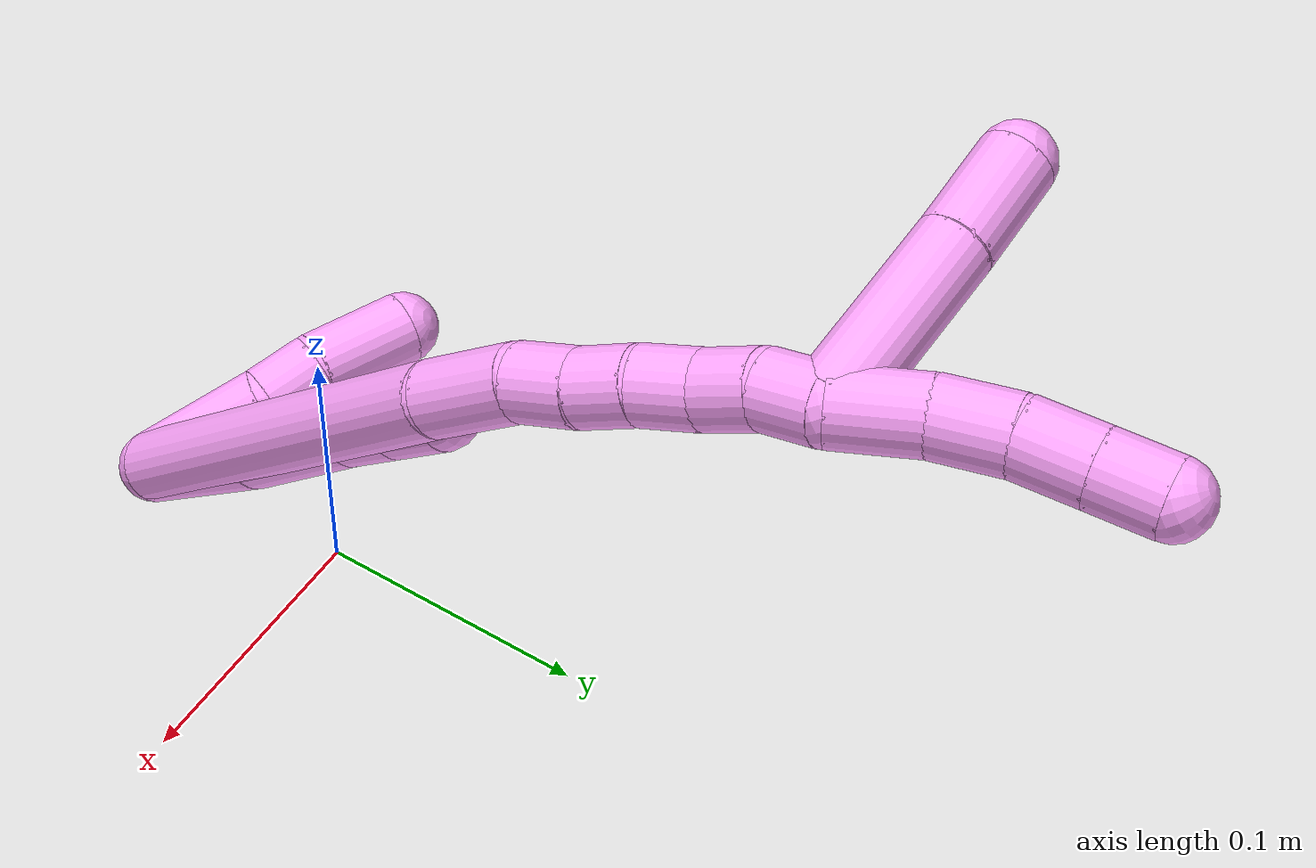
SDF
<sdf version="1.7">
 <world name="default">
  <model name="4">
   <static>0</static>
   <link name="4">
    <collision name="collision-cylinder-e_1_2_8">
     <pose>0.00084 0.006439 0.026341 -0.239734 0.03097 -0.00373</pose>
     <geometry><cylinder><radius>0.0125</radius><length>0.05426</length></cylinder></geometry>
     <surface>
      <friction><ode><mu>1.16</mu><mu2>1.16</mu2><slip1>0</slip1><slip2>0</slip2></ode></friction>
      <contact><ode><kp>1e+06</kp><kd>1</kd><max_vel>0</max_vel><min_depth>0.001</min_depth></ode></contact>
     </surface>
    </collision>
    <visual name="visual-cylinder-e_1_2_8">
     <pose>0.00084 0.006439 0.026341 -0.239734 0.03097 -0.00373</pose>
     <geometry><cylinder><radius>0.0125</radius><length>0.05426</length></cylinder></geometry>
     <material><ambient>1 0.65098 0.996078 1</ambient></material>
    </visual>
    <collision name="collision-cylinder-e_2_8_9">
     <pose>0.004582 0.019142 0.077634 -0.245976 0.112337 -0.013901</pose>
     <geometry><cylinder><radius>0.0125</radius><length>0.051777</length></cylinder></geometry>
     <surface>
      <friction><ode><mu>1.16</mu><mu2>1.16</mu2><slip1>0</slip1><slip2>0</slip2></ode></friction>
      <contact><ode><kp>1e+06</kp><kd>1</kd><max_vel>0</max_vel><min_depth>0.001</min_depth></ode></contact>
     </surface>
    </collision>
    <visual name="visual-cylinder-e_2_8_9">
     <pose>0.004582 0.019142 0.077634 -0.245976 0.112337 -0.013901</pose>
     <geometry><cylinder><radius>0.0125</radius><length>0.051777</length></cylinder></geometry>
     <material><ambient>1 0.65098 0.996078 1</ambient></material>
    </visual>
    <collision name="collision-cylinder-e_3_9_10">
     <pose>0.007858 0.02768 0.113144 -0.212135 0.034597 -0.003684</pose>
     <geometry><cylinder><radius>0.0125</radius><length>0.021616</length></cylinder></geometry>
     <surface>
      <friction><ode><mu>1.16</mu><mu2>1.16</mu2><slip1>0</slip1><slip2>0</slip2></ode></friction>
      <contact><ode><kp>1e+06</kp><kd>1</kd><max_vel>0</max_vel><min_depth>0.001</min_depth></ode></contact>
     </surface>
    </collision>
    <visual name="visual-cylinder-e_3_9_10">
     <pose>0.007858 0.02768 0.113144 -0.212135 0.034597 -0.003684</pose>
     <geometry><cylinder><radius>0.0125</radius><length>0.021616</length></cylinder></geometry>
     <material><ambient>1 0.65098 0.996078 1</ambient></material>
    </visual>
    <collision name="collision-cylinder-e_4_10_6">
     <pose>0.008664 0.032362 0.134606 -0.217384 0.03867 -0.00422</pose>
     <geometry><cylinder><radius>0.0125</radius><length>0.022347</length></cylinder></geometry>
     <surface>
      <friction><ode><mu>1.16</mu><mu2>1.16</mu2><slip1>0</slip1><slip2>0</slip2></ode></friction>
      <contact><ode><kp>1e+06</kp><kd>1</kd><max_vel>0</max_vel><min_depth>0.001</min_depth></ode></contact>
     </surface>
    </collision>
    <visual name="visual-cylinder-e_4_10_6">
     <pose>0.008664 0.032362 0.134606 -0.217384 0.03867 -0.00422</pose>
     <geometry><cylinder><radius>0.0125</radius><length>0.022347</length></cylinder></geometry>
     <material><ambient>1 0.65098 0.996078 1</ambient></material>
    </visual>
    <collision name="collision-cylinder-e_1_2_11">
     <pose>-6.9e-05 -0.010619 0.01972 0.493952 -0.003075 -0.000775</pose>
     <geometry><cylinder><radius>0.0125</radius><length>0.044794</length></cylinder></geometry>
     <surface>
      <friction><ode><mu>1.16</mu><mu2>1.16</mu2><slip1>0</slip1><slip2>0</slip2></ode></friction>
      <contact><ode><kp>1e+06</kp><kd>1</kd><max_vel>0</max_vel><min_depth>0.001</min_depth></ode></contact>
     </surface>
    </collision>
    <visual name="visual-cylinder-e_1_2_11">
     <pose>-6.9e-05 -0.010619 0.01972 0.493952 -0.003075 -0.000775</pose>
     <geometry><cylinder><radius>0.0125</radius><length>0.044794</length></cylinder></geometry>
     <material><ambient>1 0.65098 0.996078 1</ambient></material>
    </visual>
    <collision name="collision-cylinder-e_2_11_12">
     <pose>-0.000956 -0.028857 0.046454 0.826722 -0.078805 -0.034581</pose>
     <geometry><cylinder><radius>0.0125</radius><length>0.020777</length></cylinder></geometry>
     <surface>
      <friction><ode><mu>1.16</mu><mu2>1.16</mu2><slip1>0</slip1><slip2>0</slip2></ode></friction>
      <contact><ode><kp>1e+06</kp><kd>1</kd><max_vel>0</max_vel><min_depth>0.001</min_depth></ode></contact>
     </surface>
    </collision>
    <visual name="visual-cylinder-e_2_11_12">
     <pose>-0.000956 -0.028857 0.046454 0.826722 -0.078805 -0.034581</pose>
     <geometry><cylinder><radius>0.0125</radius><length>0.020777</length></cylinder></geometry>
     <material><ambient>1 0.65098 0.996078 1</ambient></material>
    </visual>
    <collision name="collision-cylinder-e_3_12_5">
     <pose>-0.00615 -0.049462 0.063886 0.894725 -0.257085 -0.123876</pose>
     <geometry><cylinder><radius>0.0125</radius><length>0.034428</length></cylinder></geometry>
     <surface>
      <friction><ode><mu>1.16</mu><mu2>1.16</mu2><slip1>0</slip1><slip2>0</slip2></ode></friction>
      <contact><ode><kp>1e+06</kp><kd>1</kd><max_vel>0</max_vel><min_depth>0.001</min_depth></ode></contact>
     </surface>
    </collision>
    <visual name="visual-cylinder-e_3_12_5">
     <pose>-0.00615 -0.049462 0.063886 0.894725 -0.257085 -0.123876</pose>
     <geometry><cylinder><radius>0.0125</radius><length>0.034428</length></cylinder></geometry>
     <material><ambient>1 0.65098 0.996078 1</ambient></material>
    </visual>
    <collision name="collision-cylinder-e_1_2_13">
     <pose>0.010219 0.022491 0.07682 -0.284812 0.126977 -0.018229</pose>
     <geometry><cylinder><radius>0.0125</radius><length>0.161388</length></cylinder></geometry>
     <surface>
      <friction><ode><mu>1.16</mu><mu2>1.16</mu2><slip1>0</slip1><slip2>0</slip2></ode></friction>
      <contact><ode><kp>1e+06</kp><kd>1</kd><max_vel>0</max_vel><min_depth>0.001</min_depth></ode></contact>
     </surface>
    </collision>
    <visual name="visual-cylinder-e_1_2_13">
     <pose>0.010219 0.022491 0.07682 -0.284812 0.126977 -0.018229</pose>
     <geometry><cylinder><radius>0.0125</radius><length>0.161388</length></cylinder></geometry>
     <material><ambient>1 0.65098 0.996078 1</ambient></material>
    </visual>
    <collision name="collision-cylinder-e_2_13_14">
     <pose>0.020675 0.047701 0.171084 -0.154684 0.01343 -0.001041</pose>
     <geometry><cylinder><radius>0.0125</radius><length>0.035314</length></cylinder></geometry>
     <surface>
      <friction><ode><mu>1.16</mu><mu2>1.16</mu2><slip1>0</slip1><slip2>0</slip2></ode></friction>
      <contact><ode><kp>1e+06</kp><kd>1</kd><max_vel>0</max_vel><min_depth>0.001</min_depth></ode></contact>
     </surface>
    </collision>
    <visual name="visual-cylinder-e_2_13_14">
     <pose>0.020675 0.047701 0.171084 -0.154684 0.01343 -0.001041</pose>
     <geometry><cylinder><radius>0.0125</radius><length>0.035314</length></cylinder></geometry>
     <material><ambient>1 0.65098 0.996078 1</ambient></material>
    </visual>
    <collision name="collision-cylinder-e_3_14_15">
     <pose>0.018324 0.052637 0.198891 -0.210647 -0.239501 0.025439</pose>
     <geometry><cylinder><radius>0.0125</radius><length>0.021816</length></cylinder></geometry>
     <surface>
      <friction><ode><mu>1.16</mu><mu2>1.16</mu2><slip1>0</slip1><slip2>0</slip2></ode></friction>
      <contact><ode><kp>1e+06</kp><kd>1</kd><max_vel>0</max_vel><min_depth>0.001</min_depth></ode></contact>
     </surface>
    </collision>
    <visual name="visual-cylinder-e_3_14_15">
     <pose>0.018324 0.052637 0.198891 -0.210647 -0.239501 0.025439</pose>
     <geometry><cylinder><radius>0.0125</radius><length>0.021816</length></cylinder></geometry>
     <material><ambient>1 0.65098 0.996078 1</ambient></material>
    </visual>
    <collision name="collision-cylinder-e_4_15_16">
     <pose>0.014199 0.055996 0.21911 -0.115431 -0.153723 0.0089</pose>
     <geometry><cylinder><radius>0.0125</radius><length>0.020082</length></cylinder></geometry>
     <surface>
      <friction><ode><mu>1.16</mu><mu2>1.16</mu2><slip1>0</slip1><slip2>0</slip2></ode></friction>
      <contact><ode><kp>1e+06</kp><kd>1</kd><max_vel>0</max_vel><min_depth>0.001</min_depth></ode></contact>
     </surface>
    </collision>
    <visual name="visual-cylinder-e_4_15_16">
     <pose>0.014199 0.055996 0.21911 -0.115431 -0.153723 0.0089</pose>
     <geometry><cylinder><radius>0.0125</radius><length>0.020082</length></cylinder></geometry>
     <material><ambient>1 0.65098 0.996078 1</ambient></material>
    </visual>
    <collision name="collision-cylinder-e_5_16_17">
     <pose>0.009451 0.058034 0.238733 -0.091418 -0.316375 0.014593</pose>
     <geometry><cylinder><radius>0.0125</radius><length>0.020639</length></cylinder></geometry>
     <surface>
      <friction><ode><mu>1.16</mu><mu2>1.16</mu2><slip1>0</slip1><slip2>0</slip2></ode></friction>
      <contact><ode><kp>1e+06</kp><kd>1</kd><max_vel>0</max_vel><min_depth>0.001</min_depth></ode></contact>
     </surface>
    </collision>
    <visual name="visual-cylinder-e_5_16_17">
     <pose>0.009451 0.058034 0.238733 -0.091418 -0.316375 0.014593</pose>
     <geometry><cylinder><radius>0.0125</radius><length>0.020639</length></cylinder></geometry>
     <material><ambient>1 0.65098 0.996078 1</ambient></material>
    </visual>
    <collision name="collision-cylinder-e_6_17_18">
     <pose>0.004886 0.060763 0.258493 -0.181479 -0.132484 0.012072</pose>
     <geometry><cylinder><radius>0.0125</radius><length>0.0205</length></cylinder></geometry>
     <surface>
      <friction><ode><mu>1.16</mu><mu2>1.16</mu2><slip1>0</slip1><slip2>0</slip2></ode></friction>
      <contact><ode><kp>1e+06</kp><kd>1</kd><max_vel>0</max_vel><min_depth>0.001</min_depth></ode></contact>
     </surface>
    </collision>
    <visual name="visual-cylinder-e_6_17_18">
     <pose>0.004886 0.060763 0.258493 -0.181479 -0.132484 0.012072</pose>
     <geometry><cylinder><radius>0.0125</radius><length>0.0205</length></cylinder></geometry>
     <material><ambient>1 0.65098 0.996078 1</ambient></material>
    </visual>
    <collision name="collision-cylinder-e_7_18_1">
     <pose>-8e-05 0.065437 0.277515 -0.304742 -0.364575 0.056598</pose>
     <geometry><cylinder><radius>0.0125</radius><length>0.020261</length></cylinder></geometry>
     <surface>
      <friction><ode><mu>1.16</mu><mu2>1.16</mu2><slip1>0</slip1><slip2>0</slip2></ode></friction>
      <contact><ode><kp>1e+06</kp><kd>1</kd><max_vel>0</max_vel><min_depth>0.001</min_depth></ode></contact>
     </surface>
    </collision>
    <visual name="visual-cylinder-e_7_18_1">
     <pose>-8e-05 0.065437 0.277515 -0.304742 -0.364575 0.056598</pose>
     <geometry><cylinder><radius>0.0125</radius><length>0.020261</length></cylinder></geometry>
     <material><ambient>1 0.65098 0.996078 1</ambient></material>
    </visual>
    <collision name="collision-cylinder-e_1_1_19">
     <pose>-0.001241 0.039417 0.300912 1.10882 0.07587 0.046992</pose>
     <geometry><cylinder><radius>0.0125</radius><length>0.064663</length></cylinder></geometry>
     <surface>
      <friction><ode><mu>1.16</mu><mu2>1.16</mu2><slip1>0</slip1><slip2>0</slip2></ode></friction>
      <contact><ode><kp>1e+06</kp><kd>1</kd><max_vel>0</max_vel><min_depth>0.001</min_depth></ode></contact>
     </surface>
    </collision>
    <visual name="visual-cylinder-e_1_1_19">
     <pose>-0.001241 0.039417 0.300912 1.10882 0.07587 0.046992</pose>
     <geometry><cylinder><radius>0.0125</radius><length>0.064663</length></cylinder></geometry>
     <material><ambient>1 0.65098 0.996078 1</ambient></material>
    </visual>
    <collision name="collision-cylinder-e_2_19_4">
     <pose>0.002614 -0.005559 0.322384 1.15573 0.07958 0.051912</pose>
     <geometry><cylinder><radius>0.0125</radius><length>0.035337</length></cylinder></geometry>
     <surface>
      <friction><ode><mu>1.16</mu><mu2>1.16</mu2><slip1>0</slip1><slip2>0</slip2></ode></friction>
      <contact><ode><kp>1e+06</kp><kd>1</kd><max_vel>0</max_vel><min_depth>0.001</min_depth></ode></contact>
     </surface>
    </collision>
    <visual name="visual-cylinder-e_2_19_4">
     <pose>0.002614 -0.005559 0.322384 1.15573 0.07958 0.051912</pose>
     <geometry><cylinder><radius>0.0125</radius><length>0.035337</length></cylinder></geometry>
     <material><ambient>1 0.65098 0.996078 1</ambient></material>
    </visual>
    <collision name="collision-cylinder-e_1_1_20">
     <pose>-0.010647 0.066792 0.299389 0.115028 -0.493483 -0.029002</pose>
     <geometry><cylinder><radius>0.0125</radius><length>0.029367</length></cylinder></geometry>
     <surface>
      <friction><ode><mu>1.16</mu><mu2>1.16</mu2><slip1>0</slip1><slip2>0</slip2></ode></friction>
      <contact><ode><kp>1e+06</kp><kd>1</kd><max_vel>0</max_vel><min_depth>0.001</min_depth></ode></contact>
     </surface>
    </collision>
    <visual name="visual-cylinder-e_1_1_20">
     <pose>-0.010647 0.066792 0.299389 0.115028 -0.493483 -0.029002</pose>
     <geometry><cylinder><radius>0.0125</radius><length>0.029367</length></cylinder></geometry>
     <material><ambient>1 0.65098 0.996078 1</ambient></material>
    </visual>
    <collision name="collision-cylinder-e_2_20_21">
     <pose>-0.023588 0.066685 0.32333 -0.123485 -0.491545 0.031012</pose>
     <geometry><cylinder><radius>0.0125</radius><length>0.025362</length></cylinder></geometry>
     <surface>
      <friction><ode><mu>1.16</mu><mu2>1.16</mu2><slip1>0</slip1><slip2>0</slip2></ode></friction>
      <contact><ode><kp>1e+06</kp><kd>1</kd><max_vel>0</max_vel><min_depth>0.001</min_depth></ode></contact>
     </surface>
    </collision>
    <visual name="visual-cylinder-e_2_20_21">
     <pose>-0.023588 0.066685 0.32333 -0.123485 -0.491545 0.031012</pose>
     <geometry><cylinder><radius>0.0125</radius><length>0.025362</length></cylinder></geometry>
     <material><ambient>1 0.65098 0.996078 1</ambient></material>
    </visual>
    <collision name="collision-cylinder-e_3_21_22">
     <pose>-0.036095 0.070509 0.343782 -0.255787 -0.593264 0.07857</pose>
     <geometry><cylinder><radius>0.0125</radius><length>0.02333</length></cylinder></geometry>
     <surface>
      <friction><ode><mu>1.16</mu><mu2>1.16</mu2><slip1>0</slip1><slip2>0</slip2></ode></friction>
      <contact><ode><kp>1e+06</kp><kd>1</kd><max_vel>0</max_vel><min_depth>0.001</min_depth></ode></contact>
     </surface>
    </collision>
    <visual name="visual-cylinder-e_3_21_22">
     <pose>-0.036095 0.070509 0.343782 -0.255787 -0.593264 0.07857</pose>
     <geometry><cylinder><radius>0.0125</radius><length>0.02333</length></cylinder></geometry>
     <material><ambient>1 0.65098 0.996078 1</ambient></material>
    </visual>
    <collision name="collision-cylinder-e_4_22_3">
     <pose>-0.048781 0.075252 0.361918 -0.255841 -0.596763 0.079078</pose>
     <geometry><cylinder><radius>0.0125</radius><length>0.021941</length></cylinder></geometry>
     <surface>
      <friction><ode><mu>1.16</mu><mu2>1.16</mu2><slip1>0</slip1><slip2>0</slip2></ode></friction>
      <contact><ode><kp>1e+06</kp><kd>1</kd><max_vel>0</max_vel><min_depth>0.001</min_depth></ode></contact>
     </surface>
    </collision>
    <visual name="visual-cylinder-e_4_22_3">
     <pose>-0.048781 0.075252 0.361918 -0.255841 -0.596763 0.079078</pose>
     <geometry><cylinder><radius>0.0125</radius><length>0.021941</length></cylinder></geometry>
     <material><ambient>1 0.65098 0.996078 1</ambient></material>
    </visual>
    <collision name="collision-sphere-3">
     <pose>-0.054946 0.077549 0.370697 0 -0 0</pose>
     <geometry><sphere><radius>0.0125</radius></sphere></geometry>
     <surface>
      <friction><ode><mu>1.16</mu><mu2>1.16</mu2><slip1>0</slip1><slip2>0</slip2></ode></friction>
      <contact><ode><kp>1e+06</kp><kd>1</kd><max_vel>0</max_vel><min_depth>0.001</min_depth></ode></contact>
     </surface>
    </collision>
    <visual name="visual-sphere-3">
     <pose>-0.054946 0.077549 0.370697 0 -0 0</pose>
     <geometry><sphere><radius>0.0125</radius></sphere></geometry>
     <material><ambient>1 0.65098 0.996078 1</ambient></material>
    </visual>
    <collision name="collision-sphere-22">
     <pose>-0.042616 0.072956 0.353139 0 -0 0</pose>
     <geometry><sphere><radius>0.0125</radius></sphere></geometry>
     <surface>
      <friction><ode><mu>1.16</mu><mu2>1.16</mu2><slip1>0</slip1><slip2>0</slip2></ode></friction>
      <contact><ode><kp>1e+06</kp><kd>1</kd><max_vel>0</max_vel><min_depth>0.001</min_depth></ode></contact>
     </surface>
    </collision>
    <visual name="visual-sphere-22">
     <pose>-0.042616 0.072956 0.353139 0 -0 0</pose>
     <geometry><sphere><radius>0.0125</radius></sphere></geometry>
     <material><ambient>1 0.65098 0.996078 1</ambient></material>
    </visual>
    <collision name="collision-sphere-21">
     <pose>-0.029574 0.068062 0.334425 0 -0 0</pose>
     <geometry><sphere><radius>0.0125</radius></sphere></geometry>
     <surface>
      <friction><ode><mu>1.16</mu><mu2>1.16</mu2><slip1>0</slip1><slip2>0</slip2></ode></friction>
      <contact><ode><kp>1e+06</kp><kd>1</kd><max_vel>0</max_vel><min_depth>0.001</min_depth></ode></contact>
     </surface>
    </collision>
    <visual name="visual-sphere-21">
     <pose>-0.029574 0.068062 0.334425 0 -0 0</pose>
     <geometry><sphere><radius>0.0125</radius></sphere></geometry>
     <material><ambient>1 0.65098 0.996078 1</ambient></material>
    </visual>
    <collision name="collision-sphere-20">
     <pose>-0.017603 0.065308 0.312236 0 -0 0</pose>
     <geometry><sphere><radius>0.0125</radius></sphere></geometry>
     <surface>
      <friction><ode><mu>1.16</mu><mu2>1.16</mu2><slip1>0</slip1><slip2>0</slip2></ode></friction>
      <contact><ode><kp>1e+06</kp><kd>1</kd><max_vel>0</max_vel><min_depth>0.001</min_depth></ode></contact>
     </surface>
    </collision>
    <visual name="visual-sphere-20">
     <pose>-0.017603 0.065308 0.312236 0 -0 0</pose>
     <geometry><sphere><radius>0.0125</radius></sphere></geometry>
     <material><ambient>1 0.65098 0.996078 1</ambient></material>
    </visual>
    <collision name="collision-sphere-4">
     <pose>0.004019 -0.021676 0.329486 0 -0 0</pose>
     <geometry><sphere><radius>0.0125</radius></sphere></geometry>
     <surface>
      <friction><ode><mu>1.16</mu><mu2>1.16</mu2><slip1>0</slip1><slip2>0</slip2></ode></friction>
      <contact><ode><kp>1e+06</kp><kd>1</kd><max_vel>0</max_vel><min_depth>0.001</min_depth></ode></contact>
     </surface>
    </collision>
    <visual name="visual-sphere-4">
     <pose>0.004019 -0.021676 0.329486 0 -0 0</pose>
     <geometry><sphere><radius>0.0125</radius></sphere></geometry>
     <material><ambient>1 0.65098 0.996078 1</ambient></material>
    </visual>
    <collision name="collision-sphere-11">
     <pose>-0.000138 -0.021237 0.039439 0 -0 0</pose>
     <geometry><sphere><radius>0.0125</radius></sphere></geometry>
     <surface>
      <friction><ode><mu>1.16</mu><mu2>1.16</mu2><slip1>0</slip1><slip2>0</slip2></ode></friction>
      <contact><ode><kp>1e+06</kp><kd>1</kd><max_vel>0</max_vel><min_depth>0.001</min_depth></ode></contact>
     </surface>
    </collision>
    <visual name="visual-sphere-11">
     <pose>-0.000138 -0.021237 0.039439 0 -0 0</pose>
     <geometry><sphere><radius>0.0125</radius></sphere></geometry>
     <material><ambient>1 0.65098 0.996078 1</ambient></material>
    </visual>
    <collision name="collision-sphere-6">
     <pose>0.009096 0.034771 0.145508 0 -0 0</pose>
     <geometry><sphere><radius>0.0125</radius></sphere></geometry>
     <surface>
      <friction><ode><mu>1.16</mu><mu2>1.16</mu2><slip1>0</slip1><slip2>0</slip2></ode></friction>
      <contact><ode><kp>1e+06</kp><kd>1</kd><max_vel>0</max_vel><min_depth>0.001</min_depth></ode></contact>
     </surface>
    </collision>
    <visual name="visual-sphere-6">
     <pose>0.009096 0.034771 0.145508 0 -0 0</pose>
     <geometry><sphere><radius>0.0125</radius></sphere></geometry>
     <material><ambient>1 0.65098 0.996078 1</ambient></material>
    </visual>
    <collision name="collision-sphere-10">
     <pose>0.008232 0.029954 0.123704 0 -0 0</pose>
     <geometry><sphere><radius>0.0125</radius></sphere></geometry>
     <surface>
      <friction><ode><mu>1.16</mu><mu2>1.16</mu2><slip1>0</slip1><slip2>0</slip2></ode></friction>
      <contact><ode><kp>1e+06</kp><kd>1</kd><max_vel>0</max_vel><min_depth>0.001</min_depth></ode></contact>
     </surface>
    </collision>
    <visual name="visual-sphere-10">
     <pose>0.008232 0.029954 0.123704 0 -0 0</pose>
     <geometry><sphere><radius>0.0125</radius></sphere></geometry>
     <material><ambient>1 0.65098 0.996078 1</ambient></material>
    </visual>
    <collision name="collision-sphere-9">
     <pose>0.007484 0.025406 0.102585 0 -0 0</pose>
     <geometry><sphere><radius>0.0125</radius></sphere></geometry>
     <surface>
      <friction><ode><mu>1.16</mu><mu2>1.16</mu2><slip1>0</slip1><slip2>0</slip2></ode></friction>
      <contact><ode><kp>1e+06</kp><kd>1</kd><max_vel>0</max_vel><min_depth>0.001</min_depth></ode></contact>
     </surface>
    </collision>
    <visual name="visual-sphere-9">
     <pose>0.007484 0.025406 0.102585 0 -0 0</pose>
     <geometry><sphere><radius>0.0125</radius></sphere></geometry>
     <material><ambient>1 0.65098 0.996078 1</ambient></material>
    </visual>
    <collision name="collision-sphere-2">
     <geometry><sphere><radius>0.0125</radius></sphere></geometry>
     <surface>
      <friction><ode><mu>1.16</mu><mu2>1.16</mu2><slip1>0</slip1><slip2>0</slip2></ode></friction>
      <contact><ode><kp>1e+06</kp><kd>1</kd><max_vel>0</max_vel><min_depth>0.001</min_depth></ode></contact>
     </surface>
    </collision>
    <visual name="visual-sphere-2">
     <geometry><sphere><radius>0.0125</radius></sphere></geometry>
     <material><ambient>1 0.65098 0.996078 1</ambient></material>
    </visual>
    <collision name="collision-sphere-19">
     <pose>0.00121 0.010558 0.315282 0 -0 0</pose>
     <geometry><sphere><radius>0.0125</radius></sphere></geometry>
     <surface>
      <friction><ode><mu>1.16</mu><mu2>1.16</mu2><slip1>0</slip1><slip2>0</slip2></ode></friction>
      <contact><ode><kp>1e+06</kp><kd>1</kd><max_vel>0</max_vel><min_depth>0.001</min_depth></ode></contact>
     </surface>
    </collision>
    <visual name="visual-sphere-19">
     <pose>0.00121 0.010558 0.315282 0 -0 0</pose>
     <geometry><sphere><radius>0.0125</radius></sphere></geometry>
     <material><ambient>1 0.65098 0.996078 1</ambient></material>
    </visual>
    <collision name="collision-sphere-8">
     <pose>0.00168 0.012878 0.052683 0 -0 0</pose>
     <geometry><sphere><radius>0.0125</radius></sphere></geometry>
     <surface>
      <friction><ode><mu>1.16</mu><mu2>1.16</mu2><slip1>0</slip1><slip2>0</slip2></ode></friction>
      <contact><ode><kp>1e+06</kp><kd>1</kd><max_vel>0</max_vel><min_depth>0.001</min_depth></ode></contact>
     </surface>
    </collision>
    <visual name="visual-sphere-8">
     <pose>0.00168 0.012878 0.052683 0 -0 0</pose>
     <geometry><sphere><radius>0.0125</radius></sphere></geometry>
     <material><ambient>1 0.65098 0.996078 1</ambient></material>
    </visual>
    <collision name="collision-sphere-12">
     <pose>-0.001773 -0.036476 0.053468 0 -0 0</pose>
     <geometry><sphere><radius>0.0125</radius></sphere></geometry>
     <surface>
      <friction><ode><mu>1.16</mu><mu2>1.16</mu2><slip1>0</slip1><slip2>0</slip2></ode></friction>
      <contact><ode><kp>1e+06</kp><kd>1</kd><max_vel>0</max_vel><min_depth>0.001</min_depth></ode></contact>
     </surface>
    </collision>
    <visual name="visual-sphere-12">
     <pose>-0.001773 -0.036476 0.053468 0 -0 0</pose>
     <geometry><sphere><radius>0.0125</radius></sphere></geometry>
     <material><ambient>1 0.65098 0.996078 1</ambient></material>
    </visual>
    <collision name="collision-sphere-5">
     <pose>-0.010527 -0.062449 0.074303 0 -0 0</pose>
     <geometry><sphere><radius>0.0125</radius></sphere></geometry>
     <surface>
      <friction><ode><mu>1.16</mu><mu2>1.16</mu2><slip1>0</slip1><slip2>0</slip2></ode></friction>
      <contact><ode><kp>1e+06</kp><kd>1</kd><max_vel>0</max_vel><min_depth>0.001</min_depth></ode></contact>
     </surface>
    </collision>
    <visual name="visual-sphere-5">
     <pose>-0.010527 -0.062449 0.074303 0 -0 0</pose>
     <geometry><sphere><radius>0.0125</radius></sphere></geometry>
     <material><ambient>1 0.65098 0.996078 1</ambient></material>
    </visual>
    <collision name="collision-sphere-13">
     <pose>0.020437 0.044981 0.153639 0 -0 0</pose>
     <geometry><sphere><radius>0.0125</radius></sphere></geometry>
     <surface>
      <friction><ode><mu>1.16</mu><mu2>1.16</mu2><slip1>0</slip1><slip2>0</slip2></ode></friction>
      <contact><ode><kp>1e+06</kp><kd>1</kd><max_vel>0</max_vel><min_depth>0.001</min_depth></ode></contact>
     </surface>
    </collision>
    <visual name="visual-sphere-13">
     <pose>0.020437 0.044981 0.153639 0 -0 0</pose>
     <geometry><sphere><radius>0.0125</radius></sphere></geometry>
     <material><ambient>1 0.65098 0.996078 1</ambient></material>
    </visual>
    <collision name="collision-sphere-14">
     <pose>0.020912 0.050422 0.188529 0 -0 0</pose>
     <geometry><sphere><radius>0.0125</radius></sphere></geometry>
     <surface>
      <friction><ode><mu>1.16</mu><mu2>1.16</mu2><slip1>0</slip1><slip2>0</slip2></ode></friction>
      <contact><ode><kp>1e+06</kp><kd>1</kd><max_vel>0</max_vel><min_depth>0.001</min_depth></ode></contact>
     </surface>
    </collision>
    <visual name="visual-sphere-14">
     <pose>0.020912 0.050422 0.188529 0 -0 0</pose>
     <geometry><sphere><radius>0.0125</radius></sphere></geometry>
     <material><ambient>1 0.65098 0.996078 1</ambient></material>
    </visual>
    <collision name="collision-sphere-15">
     <pose>0.015737 0.054853 0.209254 0 -0 0</pose>
     <geometry><sphere><radius>0.0125</radius></sphere></geometry>
     <surface>
      <friction><ode><mu>1.16</mu><mu2>1.16</mu2><slip1>0</slip1><slip2>0</slip2></ode></friction>
      <contact><ode><kp>1e+06</kp><kd>1</kd><max_vel>0</max_vel><min_depth>0.001</min_depth></ode></contact>
     </surface>
    </collision>
    <visual name="visual-sphere-15">
     <pose>0.015737 0.054853 0.209254 0 -0 0</pose>
     <geometry><sphere><radius>0.0125</radius></sphere></geometry>
     <material><ambient>1 0.65098 0.996078 1</ambient></material>
    </visual>
    <collision name="collision-sphere-16">
     <pose>0.012662 0.057139 0.228967 0 -0 0</pose>
     <geometry><sphere><radius>0.0125</radius></sphere></geometry>
     <surface>
      <friction><ode><mu>1.16</mu><mu2>1.16</mu2><slip1>0</slip1><slip2>0</slip2></ode></friction>
      <contact><ode><kp>1e+06</kp><kd>1</kd><max_vel>0</max_vel><min_depth>0.001</min_depth></ode></contact>
     </surface>
    </collision>
    <visual name="visual-sphere-16">
     <pose>0.012662 0.057139 0.228967 0 -0 0</pose>
     <geometry><sphere><radius>0.0125</radius></sphere></geometry>
     <material><ambient>1 0.65098 0.996078 1</ambient></material>
    </visual>
    <collision name="collision-sphere-17">
     <pose>0.00624 0.058929 0.2485 0 -0 0</pose>
     <geometry><sphere><radius>0.0125</radius></sphere></geometry>
     <surface>
      <friction><ode><mu>1.16</mu><mu2>1.16</mu2><slip1>0</slip1><slip2>0</slip2></ode></friction>
      <contact><ode><kp>1e+06</kp><kd>1</kd><max_vel>0</max_vel><min_depth>0.001</min_depth></ode></contact>
     </surface>
    </collision>
    <visual name="visual-sphere-17">
     <pose>0.00624 0.058929 0.2485 0 -0 0</pose>
     <geometry><sphere><radius>0.0125</radius></sphere></geometry>
     <material><ambient>1 0.65098 0.996078 1</ambient></material>
    </visual>
    <collision name="collision-sphere-18">
     <pose>0.003532 0.062597 0.268486 0 -0 0</pose>
     <geometry><sphere><radius>0.0125</radius></sphere></geometry>
     <surface>
      <friction><ode><mu>1.16</mu><mu2>1.16</mu2><slip1>0</slip1><slip2>0</slip2></ode></friction>
      <contact><ode><kp>1e+06</kp><kd>1</kd><max_vel>0</max_vel><min_depth>0.001</min_depth></ode></contact>
     </surface>
    </collision>
    <visual name="visual-sphere-18">
     <pose>0.003532 0.062597 0.268486 0 -0 0</pose>
     <geometry><sphere><radius>0.0125</radius></sphere></geometry>
     <material><ambient>1 0.65098 0.996078 1</ambient></material>
    </visual>
    <collision name="collision-sphere-1">
     <pose>-0.003692 0.068276 0.286543 0 -0 0</pose>
     <geometry><sphere><radius>0.0125</radius></sphere></geometry>
     <surface>
      <friction><ode><mu>1.16</mu><mu2>1.16</mu2><slip1>0</slip1><slip2>0</slip2></ode></friction>
      <contact><ode><kp>1e+06</kp><kd>1</kd><max_vel>0</max_vel><min_depth>0.001</min_depth></ode></contact>
     </surface>
    </collision>
    <visual name="visual-sphere-1">
     <pose>-0.003692 0.068276 0.286543 0 -0 0</pose>
     <geometry><sphere><radius>0.0125</radius></sphere></geometry>
     <material><ambient>1 0.65098 0.996078 1</ambient></material>
    </visual>
    <inertial>
     <pose>0.001278 0.027389 0.162376 0 -0 0</pose>
     <mass>0.75</mass>
     <inertia>
      <ixx>0.000443</ixx>
      <ixy>0</ixy>
      <ixz>0</ixz>
      <iyy>0.000413</iyy>
      <iyz>0</iyz>
      <izz>-6.6e-05</izz>
     </inertia>
    </inertial>
   </link>
   <pose>0.04146 -0.042053 0.062233 0.252896 -0.971516 -1.49896</pose>
  </model>
 </world>
</sdf>
